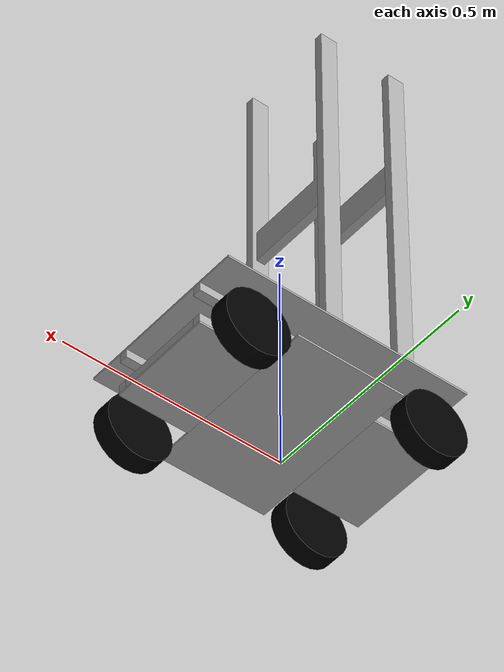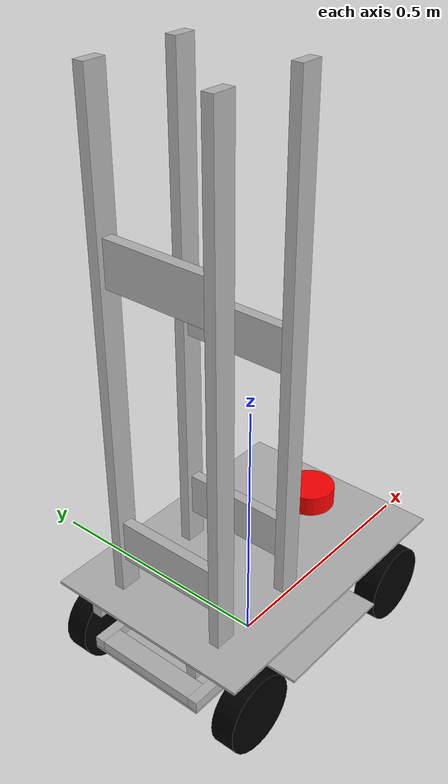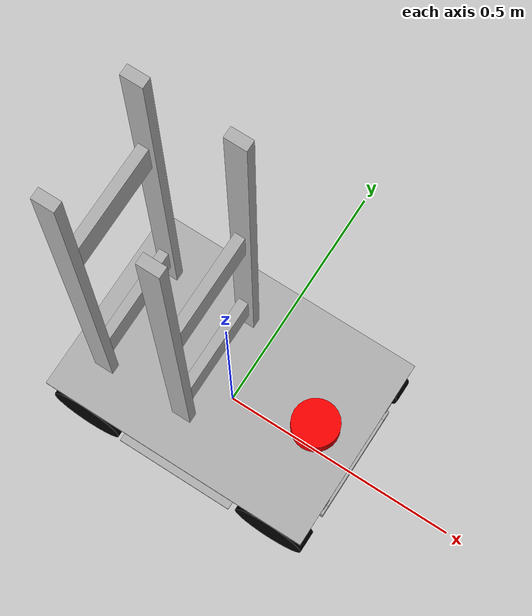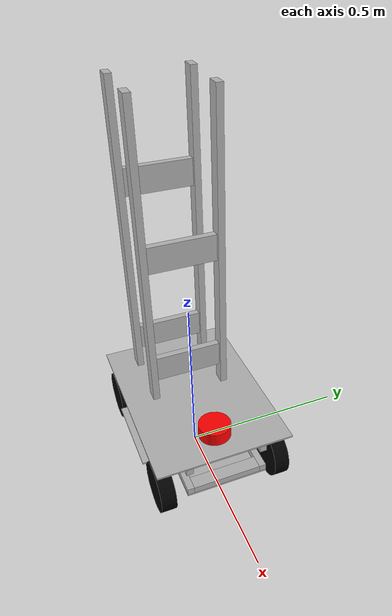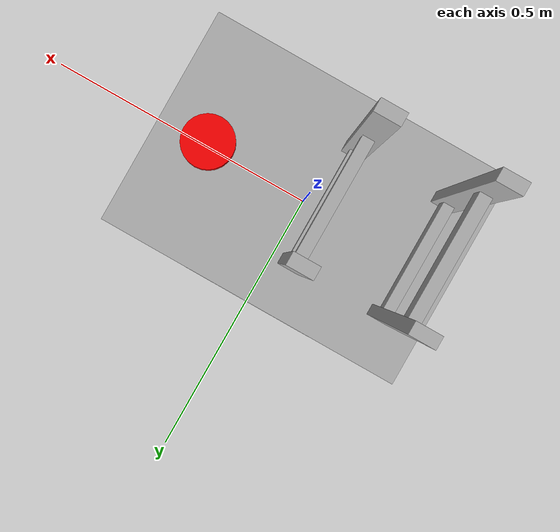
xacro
<?xml version="1.0"?>
<robot name="martha" xmlns:xacro="http://www.ros.org/wiki/xacro">

    <xacro:arg name="drive" default="planar" />
    <xacro:arg name="tower" default="true" />
    <xacro:arg name="sim" default="false" />
    <xacro:arg name="lidar_samples" default="360" />
    <xacro:arg name="controllers_file" default="$(find andesrobot_description)/config/martha_controllers.yaml" />

    <material name="black"><color rgba="0 0 0 1" /></material>
    <material name="grey"><color rgba="0.7 0.7 0.7 1" /></material>
    <material name="red"><color rgba="1 0 0 1" /></material>

    <!-- ======================= Medidas (metros) ======================= -->
    <!-- Chasis, tres placas. Una angosta adelante, una ancha al centro y una angosta atrás. -->
    <xacro:property name="base_front_x" value="0.160" />
    <xacro:property name="base_center_x" value="0.238" />
    <xacro:property name="base_rear_x" value="0.160" />
    <xacro:property name="base_narrow_y" value="0.240" />
    <xacro:property name="base_center_y" value="0.410" />
    <xacro:property name="base_z" value="0.025" />
    <xacro:property name="height_0" value="0.125" />
    <xacro:property name="wheel_mass" value="0.613" />
    <xacro:property name="roller_count" value="15" />
    <xacro:property name="roller_mass" value="0.03" />
    <xacro:property name="wheel_length" value="0.045" />
    <xacro:property name="wheel_radius" value="0.075" />
    <xacro:property name="hub_radius" value="0.045" />
    <xacro:property name="roller_radius" value="0.014" />
    <xacro:property name="roller_length" value="0.040" />
    <xacro:property name="roller_mount_radius" value="0.065" />
    <xacro:property name="roller_angle" value="0.785398" />
    <!-- Centro de cada rueda respecto a base_link. lx = 0.21, ly = 0.175 (lx + ly = 0.385). -->
    <xacro:property name="wheel_pos_x" value="0.21" />
    <xacro:property name="wheel_pos_y" value="0.175" />
    <xacro:property name="wheel_pos_z" value="0.08" />
    <!-- built = la Martha real (tower=true). Casi todas las medidas de abajo dependen de esto. -->
    <xacro:property name="built" value="${'$(arg tower)' == 'true'}" />
    <!-- Lidar. Distancia delante de base_link, el lidar_offset_x de martha_nav (0.19 m en la Martha
         real, ROBOTS['martha_tower']; 0.2325 m en el modelo original, ROBOTS['martha']). -->
    <xacro:property name="lidar_length" value="0.04" />
    <xacro:property name="lidar_radius" value="0.0475" />
    <xacro:property name="lidar_x" value="${0.19 if built else 0.2325}" />
    <xacro:property name="contact_shell_x" value="0.580" />
    <xacro:property name="contact_shell_y" value="0.410" />
    <xacro:property name="contact_shell_center_z" value="0.125" />
    <xacro:property name="contact_shell_height" value="0.200" />
    <xacro:property name="lidar_shell_clearance" value="0.010" />
    <xacro:property name="board_z" value="0.005" />
    <xacro:property name="board_center_x" value="0.250" />
    <xacro:property name="upper_board_x" value="0.570" />
    <xacro:property name="upper_board_y" value="0.405" />
    <xacro:property name="lower_board_top" value="0.095" />
    <xacro:property name="upper_board_top" value="0.200" />
    <xacro:property name="scan_z" value="${upper_board_top + 0.031}" />
    <xacro:property name="profile" value="0.020" />
    <xacro:property name="profile_kg_per_m" value="0.5" />
    <xacro:property name="post_sx" value="0.040" />
    <xacro:property name="post_sy" value="0.020" />
    <xacro:property name="post_x_front" value="-0.033" />
    <xacro:property name="post_x_rear" value="-0.208" />
    <xacro:property name="post_y" value="0.11" />
    <xacro:property name="post_height" value="0.91" />
    <xacro:property name="crossbar_sz" value="0.080" />
    <xacro:property name="crossbar_low" value="0.065" />
    <xacro:property name="crossbar_high_front" value="0.435" />
    <xacro:property name="crossbar_high_rear" value="0.585" />

    <!-- ======================= Cuerpo ======================= -->
    <link name="base_footprint" />

    <joint name="base_footprint_joint" type="fixed">
        <parent link="base_footprint" />
        <child link="base_link" />
        <origin xyz="0 0 0" />
    </joint>

    <!-- Una placa con la forma del chasis (angosta adelante y atrás, ancha al centro), de grosor
         thickness y centrada a la altura z. -->
    <xacro:macro name="chassis_plate" params="center_x thickness z">
        <visual>
            <origin xyz="${center_x/2 + base_front_x/2} 0 ${z}"/>
            <geometry><box size="${base_front_x} ${base_narrow_y} ${thickness}"/></geometry>
            <material name="grey"/>
        </visual>
        <visual>
            <origin xyz="0 0 ${z}"/>
            <geometry><box size="${center_x} ${base_center_y} ${thickness}"/></geometry>
            <material name="grey"/>
        </visual>
        <visual>
            <origin xyz="${-(center_x/2 + base_rear_x/2)} 0 ${z}"/>
            <geometry><box size="${base_rear_x} ${base_narrow_y} ${thickness}"/></geometry>
            <material name="grey"/>
        </visual>
    </xacro:macro>

    <link name="base_link">
        <!-- Modelo original, una sola placa gruesa. -->
        <xacro:unless value="${built}">
            <xacro:chassis_plate center_x="${base_center_x}" thickness="${base_z}" z="${height_0}" />
        </xacro:unless>
        <!-- Martha real, la tabla de abajo (forma del chasis) y la de arriba (rectángulo). -->
        <xacro:if value="${built}">
            <xacro:chassis_plate center_x="${board_center_x}" thickness="${board_z}" z="${lower_board_top - board_z/2}" />
            <visual>
                <origin xyz="0 0 ${upper_board_top - board_z/2}"/>
                <geometry><box size="${upper_board_x} ${upper_board_y} ${board_z}"/></geometry>
                <material name="grey"/>
            </visual>
        </xacro:if>
        <!-- Una sola colisión, la caja de contacto. -->
        <collision name="contact_shell_collision">
            <origin xyz="0 0 ${contact_shell_center_z}"/>
            <geometry>
                <box size="${contact_shell_x} ${contact_shell_y} ${contact_shell_height}"/>
            </geometry>
        </collision>
        <xacro:property name="base_mass" value="${5.448 if built else 20}" />
        <inertial>
            <origin xyz="${'-0.169 0 0.10' if built else '0 0 0'}"/>
            <mass value="${base_mass}"/>
            <inertia ixx="${base_mass * (contact_shell_y**2 + contact_shell_height**2) / 12}"
                     iyy="${base_mass * (contact_shell_x**2 + contact_shell_height**2) / 12}"
                     izz="${base_mass * (contact_shell_x**2 + contact_shell_y**2) / 12}"
                     ixy="0" ixz="0" iyz="0"/>
        </inertial>
    </link>

    <!-- ======================= Sensores ======================= -->
    <!-- RPLIDAR A2M8. El frame laser está en el plano del scan, que queda sobre la caja de
         contacto, así el robot no se ve a sí mismo (salvo los postes de la torre). -->
    <link name="laser">
        <visual>
            <!-- En la Martha real el frame está en el plano del scan y la carcasa queda abajo, apoyada
                 en la tabla. -->
            <origin xyz="0 0 ${upper_board_top + lidar_length/2 - scan_z if built else 0}"/>
            <geometry><cylinder length="${lidar_length}" radius="${lidar_radius}"/></geometry>
            <material name="red" />
        </visual>
        <inertial>
            <mass value="0.1"/>
            <inertia ixx="1e-4" ixy="0.0" ixz="0.0" iyy="1e-4" iyz="0.0" izz="1e-4"/>
        </inertial>
    </link>

    <joint name="laser_joint" type="fixed">
        <parent link="base_link" />
        <child link="laser" />
        <origin xyz="${lidar_x} 0 ${scan_z if built else contact_shell_center_z + contact_shell_height/2 + lidar_length/2 + lidar_shell_clearance}"/>
    </joint>

    <!-- IMU. Posición provisoria (centro del chasis); Estructura la corrige cuando la monte. -->
    <link name="imu_link">
        <inertial>
            <mass value="0.01"/>
            <inertia ixx="1e-6" ixy="0.0" ixz="0.0" iyy="1e-6" iyz="0.0" izz="1e-6"/>
        </inertial>
    </link>

    <joint name="imu_joint" type="fixed">
        <parent link="base_link" />
        <child link="imu_link" />
        <origin xyz="0 0 ${height_0 + base_z/2}"/>
    </joint>

    <!-- ======================= Torre ======================= -->
    <!-- Un perfil recto de aluminio, fijo a base_link y centrado en (x, y, z). -->
    <xacro:macro name="profile_bar" params="name x y z sx sy sz">
        <xacro:property name="mass" value="${profile_kg_per_m * (sx + sy + sz - 2 * profile)}" />
        <link name="${name}">
            <visual>
                <geometry><box size="${sx} ${sy} ${sz}"/></geometry>
                <material name="grey"/>
            </visual>
            <collision>
                <geometry><box size="${sx} ${sy} ${sz}"/></geometry>
            </collision>
            <inertial>
                <mass value="${mass}"/>
                <inertia ixx="${mass * (sy*sy + sz*sz) / 12}" iyy="${mass * (sx*sx + sz*sz) / 12}"
                         izz="${mass * (sx*sx + sy*sy) / 12}" ixy="0" ixz="0" iyz="0"/>
            </inertial>
        </link>
        <joint name="base_${name}_joint" type="fixed">
            <parent link="base_link" />
            <child link="${name}" />
            <origin xyz="${x} ${y} ${z}"/>
        </joint>
        <gazebo reference="${name}">
            <material>Gazebo/Grey</material>
        </gazebo>
    </xacro:macro>

    <xacro:if value="${built}">
        <xacro:property name="post_z" value="${upper_board_top + post_height/2}" />
        <xacro:property name="inner_y" value="${2*post_y - post_sy}" />
        <!-- Los 4 postes. Cruzan el plano del lidar, así que el lidar los ve. -->
        <xacro:profile_bar name="tower_post_front_left" x="${post_x_front}" y="${post_y}" z="${post_z}" sx="${post_sx}" sy="${post_sy}" sz="${post_height}" />
        <xacro:profile_bar name="tower_post_front_right" x="${post_x_front}" y="${-post_y}" z="${post_z}" sx="${post_sx}" sy="${post_sy}" sz="${post_height}" />
        <xacro:profile_bar name="tower_post_rear_left" x="${post_x_rear}" y="${post_y}" z="${post_z}" sx="${post_sx}" sy="${post_sy}" sz="${post_height}" />
        <xacro:profile_bar name="tower_post_rear_right" x="${post_x_rear}" y="${-post_y}" z="${post_z}" sx="${post_sx}" sy="${post_sy}" sz="${post_height}" />
        <!-- Travesaños entre los postes delanteros y entre los traseros, ubicados por su cara de
             abajo (uno bajo y uno alto en cada par). -->
        <xacro:profile_bar name="tower_crossbar_front_low" x="${post_x_front}" y="0" z="${upper_board_top + crossbar_low + crossbar_sz/2}" sx="${profile}" sy="${inner_y}" sz="${crossbar_sz}" />
        <xacro:profile_bar name="tower_crossbar_front_high" x="${post_x_front}" y="0" z="${upper_board_top + crossbar_high_front + crossbar_sz/2}" sx="${profile}" sy="${inner_y}" sz="${crossbar_sz}" />
        <xacro:profile_bar name="tower_crossbar_rear_low" x="${post_x_rear}" y="0" z="${upper_board_top + crossbar_low + crossbar_sz/2}" sx="${profile}" sy="${inner_y}" sz="${crossbar_sz}" />
        <xacro:profile_bar name="tower_crossbar_rear_high" x="${post_x_rear}" y="0" z="${upper_board_top + crossbar_high_rear + crossbar_sz/2}" sx="${profile}" sy="${inner_y}" sz="${crossbar_sz}" />

        <xacro:property name="frame_low_z" value="${lower_board_top + profile/2}" />
        <xacro:property name="frame_high_z" value="${upper_board_top - board_z - profile/2}" />
        <xacro:property name="frame_post_sz" value="${frame_high_z - frame_low_z - profile}" />
        <xacro:property name="frame_cross_x" value="${upper_board_x/2 - post_sx/2}" />
        <xacro:profile_bar name="frame_rail_low_left" x="0" y="${post_y}" z="${frame_low_z}" sx="${upper_board_x}" sy="${profile}" sz="${profile}" />
        <xacro:profile_bar name="frame_rail_low_right" x="0" y="${-post_y}" z="${frame_low_z}" sx="${upper_board_x}" sy="${profile}" sz="${profile}" />
        <xacro:profile_bar name="frame_rail_high_left" x="0" y="${post_y}" z="${frame_high_z}" sx="${upper_board_x}" sy="${profile}" sz="${profile}" />
        <xacro:profile_bar name="frame_rail_high_right" x="0" y="${-post_y}" z="${frame_high_z}" sx="${upper_board_x}" sy="${profile}" sz="${profile}" />
        <xacro:profile_bar name="frame_post_front_left" x="${board_center_x/2}" y="${post_y}" z="${(frame_low_z + frame_high_z)/2}" sx="${profile}" sy="${profile}" sz="${frame_post_sz}" />
        <xacro:profile_bar name="frame_post_front_right" x="${board_center_x/2}" y="${-post_y}" z="${(frame_low_z + frame_high_z)/2}" sx="${profile}" sy="${profile}" sz="${frame_post_sz}" />
        <xacro:profile_bar name="frame_post_rear_left" x="${-board_center_x/2}" y="${post_y}" z="${(frame_low_z + frame_high_z)/2}" sx="${profile}" sy="${profile}" sz="${frame_post_sz}" />
        <xacro:profile_bar name="frame_post_rear_right" x="${-board_center_x/2}" y="${-post_y}" z="${(frame_low_z + frame_high_z)/2}" sx="${profile}" sy="${profile}" sz="${frame_post_sz}" />
        <xacro:profile_bar name="frame_cross_front" x="${frame_cross_x}" y="0" z="${frame_low_z}" sx="${post_sx}" sy="${inner_y}" sz="${profile}" />
        <xacro:profile_bar name="frame_cross_rear" x="${-frame_cross_x}" y="0" z="${frame_low_z}" sx="${post_sx}" sy="${inner_y}" sz="${profile}" />
    </xacro:if>

    <!-- ======================= Ruedas ======================= -->
    <xacro:macro name="fixed_wheel" params="name x y">
        <link name="${name}_wheel">
            <visual>
                <geometry><cylinder length="${wheel_length}" radius="${wheel_radius}" /></geometry>
                <material name="black" />
            </visual>
            <collision>
                <geometry><cylinder length="${wheel_length}" radius="${wheel_radius}" /></geometry>
            </collision>
            <inertial>
                <mass value="${wheel_mass}"/>
                <inertia ixx="0.01" ixy="0.0" ixz="0.0" iyy="0.01" iyz="0.0" izz="0.01"/>
            </inertial>
        </link>
        <joint name="base_${name}_wheel_joint" type="fixed">
            <parent link="base_link" />
            <child link="${name}_wheel" />
            <origin xyz="${x} ${y} ${wheel_pos_z}" rpy="1.570796 0 0" />
        </joint>
        <gazebo reference="${name}_wheel">
            <material>Gazebo/Black</material>
            <mu1>0.0</mu1>
            <mu2>0.0</mu2>
        </gazebo>
    </xacro:macro>

    <!-- Rodillo de la rueda mecanum. Sin maxVel y minDepth los rodillos vibran y el robot salta. -->
    <xacro:macro name="mecanum_roller" params="wheel_name index x y yaw pitch">
        <link name="${wheel_name}_roller_${index}">
            <visual>
                <geometry><cylinder length="${roller_length}" radius="${roller_radius}" /></geometry>
                <material name="black" />
            </visual>
            <collision>
                <geometry><cylinder length="${roller_length}" radius="${roller_radius}" /></geometry>
            </collision>
            <inertial>
                <mass value="${roller_mass}"/>
                <inertia ixx="0.00002" ixy="0.0" ixz="0.0" iyy="0.00002" iyz="0.0" izz="0.00001"/>
            </inertial>
        </link>
        <joint name="${wheel_name}_roller_${index}_joint" type="continuous">
            <parent link="${wheel_name}_wheel" />
            <child link="${wheel_name}_roller_${index}" />
            <origin xyz="${x} ${y} 0" rpy="0 ${pitch} ${yaw}" />
            <axis xyz="0 0 1" />
            <dynamics damping="0.01" friction="0.0" />
        </joint>
        <gazebo reference="${wheel_name}_roller_${index}">
            <material>Gazebo/Black</material>
            <mu1>1.0</mu1>
            <mu2>1.0</mu2>
            <kp>100000.0</kp>
            <kd>1.0</kd>
            <minDepth>0.001</minDepth>
            <maxVel>0.1</maxVel>
        </gazebo>
    </xacro:macro>

    <!-- Los roller_count rodillos de una rueda, repartidos parejo alrededor del eje (se llama a sí
         misma con i + 1 hasta llegar a roller_count). -->
    <xacro:macro name="mecanum_rollers" params="wheel_name pitch i">
        <xacro:if value="${roller_count > i}">
            <xacro:property name="angle" value="${2 * pi * i / roller_count}" />
            <xacro:mecanum_roller wheel_name="${wheel_name}" index="${i}" x="${roller_mount_radius * cos(angle)}" y="${roller_mount_radius * sin(angle)}" yaw="${angle + pi/2}" pitch="${pitch}" />
            <xacro:mecanum_rollers wheel_name="${wheel_name}" pitch="${pitch}" i="${i + 1}" />
        </xacro:if>
    </xacro:macro>

    <!-- Rueda mecanum (drive=mecanum). Un cubo con roller_count rodillos a 45 grados. -->
    <xacro:macro name="mecanum_wheel" params="name x y pitch">
        <link name="${name}_wheel">
            <visual>
                <geometry><cylinder length="${wheel_length}" radius="${hub_radius}" /></geometry>
                <material name="grey" />
            </visual>
            <collision>
                <geometry><cylinder length="${wheel_length}" radius="${hub_radius}" /></geometry>
            </collision>
            <inertial>
                <mass value="${wheel_mass - roller_count * roller_mass}"/>
                <inertia ixx="0.01" ixy="0.0" ixz="0.0" iyy="0.01" iyz="0.0" izz="0.01"/>
            </inertial>
        </link>
        <joint name="base_${name}_wheel_joint" type="continuous">
            <parent link="base_link" />
            <child link="${name}_wheel" />
            <origin xyz="${x} ${y} ${wheel_pos_z}" rpy="1.57 0 0" />
            <axis xyz="0 0 -1" />
        </joint>
        <xacro:mecanum_rollers wheel_name="${name}" pitch="${pitch}" i="0" />
    </xacro:macro>

    <xacro:if value="${'$(arg drive)' == 'mecanum'}">
        <!-- Los rodillos forman una X vistos desde arriba (delantera izquierda y trasera derecha
             iguales, las otras dos al revés). -->
        <xacro:mecanum_wheel name="front_left" x="${wheel_pos_x}" y="${wheel_pos_y}" pitch="${roller_angle}" />
        <xacro:mecanum_wheel name="front_right" x="${wheel_pos_x}" y="${-wheel_pos_y}" pitch="${pi - roller_angle}" />
        <xacro:mecanum_wheel name="rear_left" x="${-wheel_pos_x}" y="${wheel_pos_y}" pitch="${pi - roller_angle}" />
        <xacro:mecanum_wheel name="rear_right" x="${-wheel_pos_x}" y="${-wheel_pos_y}" pitch="${roller_angle}" />
    </xacro:if>

    <xacro:unless value="${'$(arg drive)' == 'mecanum'}">
        <xacro:fixed_wheel name="front_left" x="${wheel_pos_x}" y="${wheel_pos_y}" />
        <xacro:fixed_wheel name="front_right" x="${wheel_pos_x}" y="${-wheel_pos_y}" />
        <xacro:fixed_wheel name="rear_left" x="${-wheel_pos_x}" y="${wheel_pos_y}" />
        <xacro:fixed_wheel name="rear_right" x="${-wheel_pos_x}" y="${-wheel_pos_y}" />
    </xacro:unless>

    <gazebo reference="base_link">
        <material>Gazebo/Grey</material>
    </gazebo>
    <gazebo reference="laser">
        <material>Gazebo/Red</material>
    </gazebo>

    <!-- Plugins de Gazebo (lidar, IMU y movimiento), solo en simulación. -->
    <xacro:if value="$(arg sim)">
        <xacro:include filename="martha.sim.xacro" />
    </xacro:if>

</robot>
